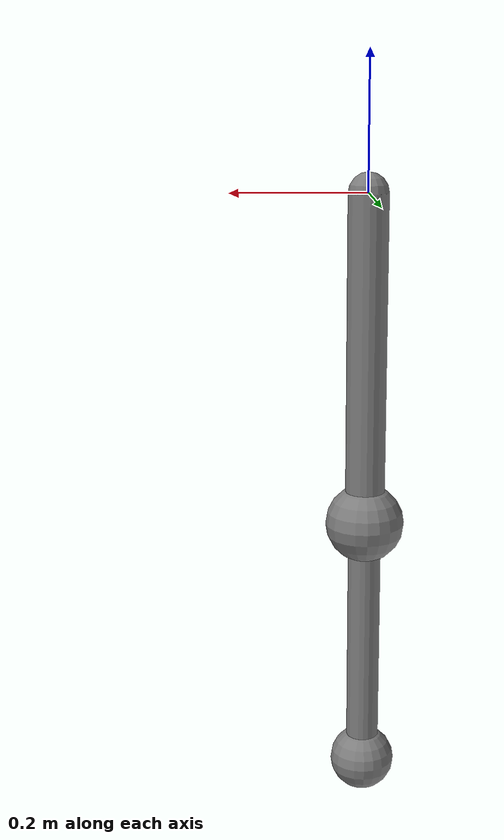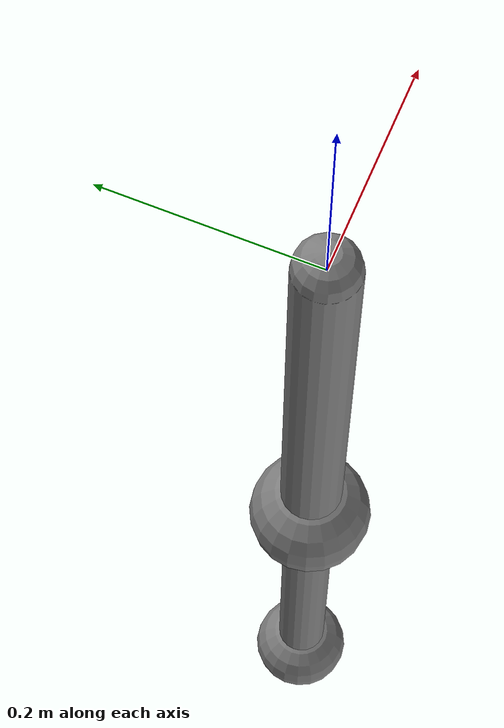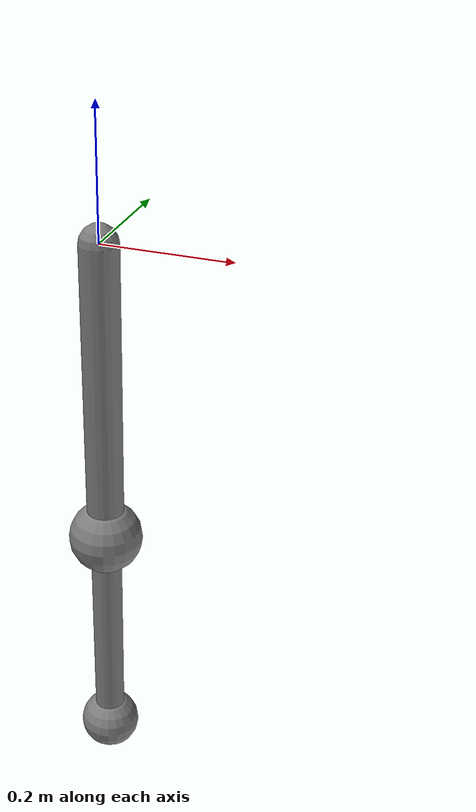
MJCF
<mujoco model="connect-stress-test">
          <compiler angle="radian"/>
          <option gravity="0 0 -9.81" timestep="0.001" solver="Newton"
                  iterations="50" tolerance="1e-10">
            <flag energy="enable"/>
          </option>
          <worldbody>
            <!-- Link1 origin at world origin — pivot point -->
            <body name="link1" pos="0 0 0">
              <freejoint damping="0.01"/>
              <geom name="rod1" type="capsule" fromto="0 0 0 0 0 -0.5" size="0.03" mass="1"/>
              <geom name="ball1" type="sphere" pos="0 0 -0.5" size="0.06" mass="0.5"/>
            </body>

            <!-- Link2 origin at link1 tip (0, 0, -0.5) -->
            <body name="link2" pos="0 0 -0.5">
              <freejoint damping="0.01"/>
              <geom name="rod2" type="capsule" fromto="0 0 0 0 0 -0.4" size="0.025" mass="0.8"/>
              <geom name="ball2" type="sphere" pos="0 0 -0.4" size="0.05" mass="0.3"/>
            </body>
          </worldbody>
          <equality>
            <connect body1="link1" anchor="0 0 0" solref="0.005 1.0"/>
            <connect body1="link1" body2="link2" anchor="0 0 -0.5" solref="0.005 1.0"/>
          </equality>
        </mujoco>
